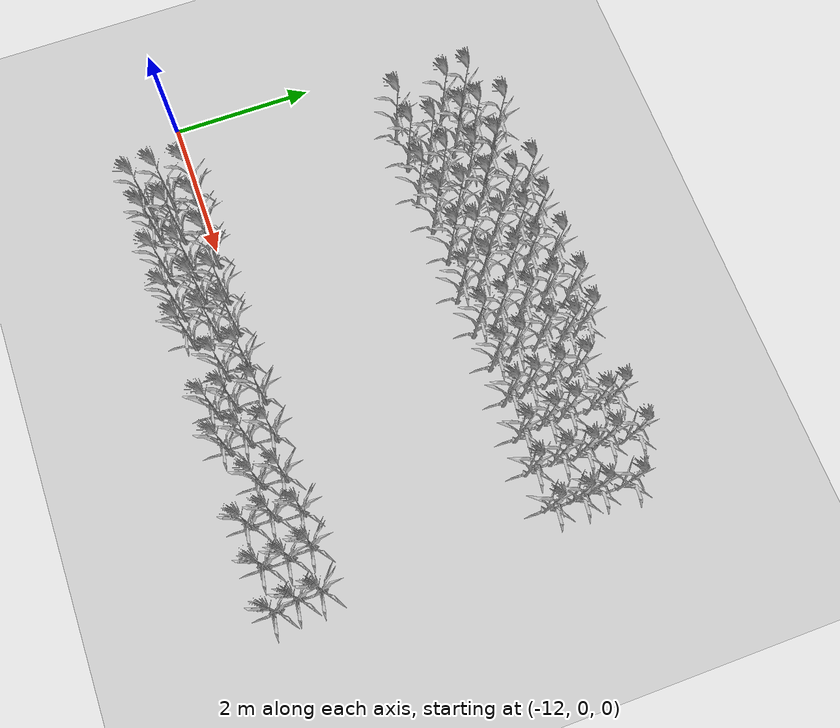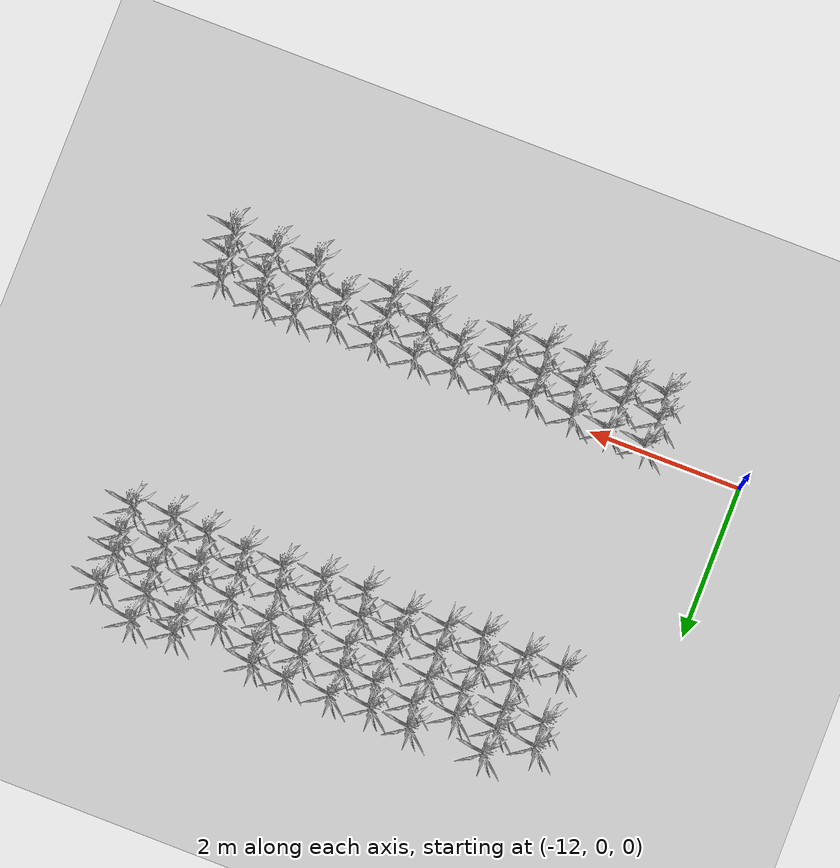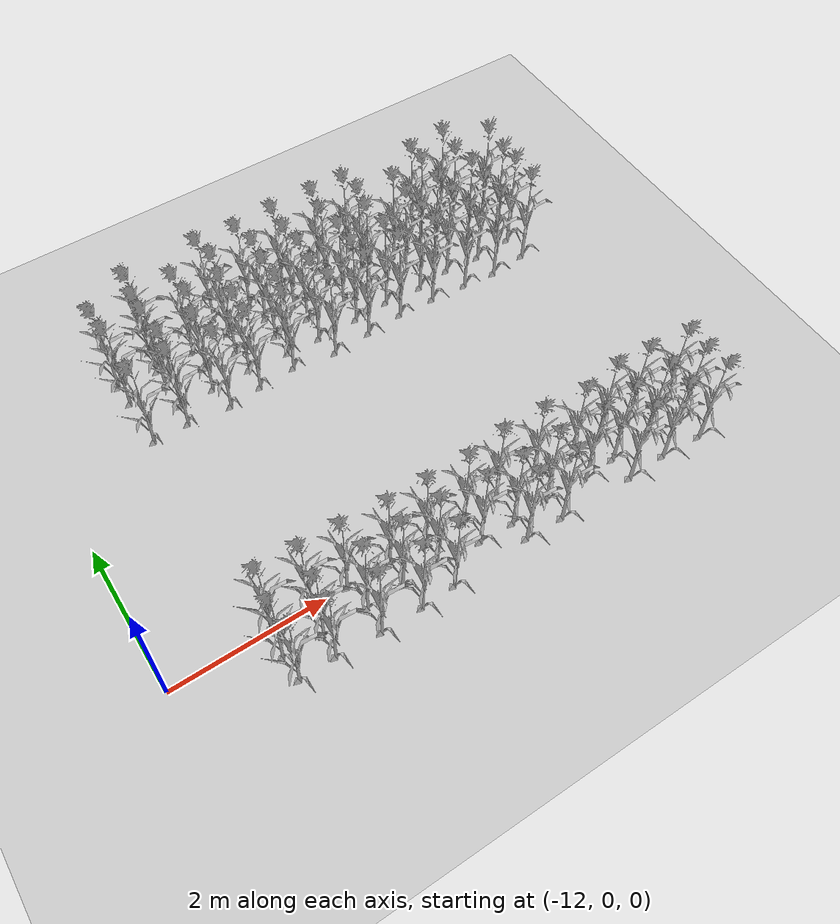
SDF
<sdf version="1.7">
 <world name="farmland_world">
  <model name="ground_plane">
   <static>1</static>
   <link name="link">
    <collision name="collision">
     <geometry><plane><normal>0 0 1</normal><size>40.0 40.0</size></plane></geometry>
     <surface><friction><ode><mu>100</mu><mu2>50</mu2></ode></friction></surface>
    </collision>
    <visual name="visual">
     <cast_shadows>0</cast_shadows>
     <geometry><plane><normal>0 0 1</normal><size>40.0 40.0</size></plane></geometry>
     <material>
      <script><uri>file://media/materials/scripts/gazebo.material</uri><name>Gazebo/Grey</name></script>
     </material>
    </visual>
   </link>
  </model>
  <model name="tree_3_2667">
   <static>1</static>
   <link name="link">
    <collision name="collision">
     <geometry><mesh><uri>model://Corn_low_poly/corn.obj</uri><scale>1 1 1</scale></mesh></geometry>
     <surface><friction><ode><mu>100</mu><mu2>50</mu2></ode></friction></surface>
    </collision>
    <visual name="visual">
     <geometry><mesh><uri>model://Corn_low_poly/corn.obj</uri><scale>1 1 1</scale></mesh></geometry>
    </visual>
   </link>
   <pose>-5.005461020102361 -0.03892165614499782 0 0 0 0</pose>
  </model>
  <model name="tree_3_2668">
   <static>1</static>
   <link name="link">
    <collision name="collision">
     <geometry><mesh><uri>model://Corn_low_poly/corn.obj</uri><scale>1 1 1</scale></mesh></geometry>
     <surface><friction><ode><mu>100</mu><mu2>50</mu2></ode></friction></surface>
    </collision>
    <visual name="visual">
     <geometry><mesh><uri>model://Corn_low_poly/corn.obj</uri><scale>1 1 1</scale></mesh></geometry>
    </visual>
   </link>
   <pose>-5.558517937180921 0.01446599095576704 0 0 0 0</pose>
  </model>
  <model name="tree_3_2669">
   <static>1</static>
   <link name="link">
    <collision name="collision">
     <geometry><mesh><uri>model://Corn_low_poly/corn.obj</uri><scale>1 1 1</scale></mesh></geometry>
     <surface><friction><ode><mu>100</mu><mu2>50</mu2></ode></friction></surface>
    </collision>
    <visual name="visual">
     <geometry><mesh><uri>model://Corn_low_poly/corn.obj</uri><scale>1 1 1</scale></mesh></geometry>
    </visual>
   </link>
   <pose>-6.015332700542262 0.034829561023227096 0 0 0 0</pose>
  </model>
  <model name="tree_3_2670">
   <static>1</static>
   <link name="link">
    <collision name="collision">
     <geometry><mesh><uri>model://Corn_low_poly/corn.obj</uri><scale>1 1 1</scale></mesh></geometry>
     <surface><friction><ode><mu>100</mu><mu2>50</mu2></ode></friction></surface>
    </collision>
    <visual name="visual">
     <geometry><mesh><uri>model://Corn_low_poly/corn.obj</uri><scale>1 1 1</scale></mesh></geometry>
    </visual>
   </link>
   <pose>-6.521444321734387 -0.04173886616548786 0 0 0 0</pose>
  </model>
  <model name="tree_3_2671">
   <static>1</static>
   <link name="link">
    <collision name="collision">
     <geometry><mesh><uri>model://Corn_low_poly/corn.obj</uri><scale>1 1 1</scale></mesh></geometry>
     <surface><friction><ode><mu>100</mu><mu2>50</mu2></ode></friction></surface>
    </collision>
    <visual name="visual">
     <geometry><mesh><uri>model://Corn_low_poly/corn.obj</uri><scale>1 1 1</scale></mesh></geometry>
    </visual>
   </link>
   <pose>-7.078208168965945 -0.0007108948782999392 0 0 0 0</pose>
  </model>
  <model name="tree_3_2672">
   <static>1</static>
   <link name="link">
    <collision name="collision">
     <geometry><mesh><uri>model://Corn_low_poly/corn.obj</uri><scale>1 1 1</scale></mesh></geometry>
     <surface><friction><ode><mu>100</mu><mu2>50</mu2></ode></friction></surface>
    </collision>
    <visual name="visual">
     <geometry><mesh><uri>model://Corn_low_poly/corn.obj</uri><scale>1 1 1</scale></mesh></geometry>
    </visual>
   </link>
   <pose>-7.621871746225695 0.012083217765882281 0 0 0 0</pose>
  </model>
  <model name="tree_3_2673">
   <static>1</static>
   <link name="link">
    <collision name="collision">
     <geometry><mesh><uri>model://Corn_low_poly/corn.obj</uri><scale>1 1 1</scale></mesh></geometry>
     <surface><friction><ode><mu>100</mu><mu2>50</mu2></ode></friction></surface>
    </collision>
    <visual name="visual">
     <geometry><mesh><uri>model://Corn_low_poly/corn.obj</uri><scale>1 1 1</scale></mesh></geometry>
    </visual>
   </link>
   <pose>-8.127287433233514 -0.047563016953597825 0 0 0 0</pose>
  </model>
  <model name="tree_3_2674">
   <static>1</static>
   <link name="link">
    <collision name="collision">
     <geometry><mesh><uri>model://Corn_low_poly/corn.obj</uri><scale>1 1 1</scale></mesh></geometry>
     <surface><friction><ode><mu>100</mu><mu2>50</mu2></ode></friction></surface>
    </collision>
    <visual name="visual">
     <geometry><mesh><uri>model://Corn_low_poly/corn.obj</uri><scale>1 1 1</scale></mesh></geometry>
    </visual>
   </link>
   <pose>-8.665980751416415 -0.042846647139199584 0 0 0 0</pose>
  </model>
  <model name="tree_3_2675">
   <static>1</static>
   <link name="link">
    <collision name="collision">
     <geometry><mesh><uri>model://Corn_low_poly/corn.obj</uri><scale>1 1 1</scale></mesh></geometry>
     <surface><friction><ode><mu>100</mu><mu2>50</mu2></ode></friction></surface>
    </collision>
    <visual name="visual">
     <geometry><mesh><uri>model://Corn_low_poly/corn.obj</uri><scale>1 1 1</scale></mesh></geometry>
    </visual>
   </link>
   <pose>-9.158788520445293 -0.03712890807018956 0 0 0 0</pose>
  </model>
  <model name="tree_3_2676">
   <static>1</static>
   <link name="link">
    <collision name="collision">
     <geometry><mesh><uri>model://Corn_low_poly/corn.obj</uri><scale>1 1 1</scale></mesh></geometry>
     <surface><friction><ode><mu>100</mu><mu2>50</mu2></ode></friction></surface>
    </collision>
    <visual name="visual">
     <geometry><mesh><uri>model://Corn_low_poly/corn.obj</uri><scale>1 1 1</scale></mesh></geometry>
    </visual>
   </link>
   <pose>-9.71469996242792 -0.002769773199193948 0 0 0 0</pose>
  </model>
  <model name="tree_3_2677">
   <static>1</static>
   <link name="link">
    <collision name="collision">
     <geometry><mesh><uri>model://Corn_low_poly/corn.obj</uri><scale>1 1 1</scale></mesh></geometry>
     <surface><friction><ode><mu>100</mu><mu2>50</mu2></ode></friction></surface>
    </collision>
    <visual name="visual">
     <geometry><mesh><uri>model://Corn_low_poly/corn.obj</uri><scale>1 1 1</scale></mesh></geometry>
    </visual>
   </link>
   <pose>-10.200924245602979 0.013914292661800576 0 0 0 0</pose>
  </model>
  <model name="tree_3_2678">
   <static>1</static>
   <link name="link">
    <collision name="collision">
     <geometry><mesh><uri>model://Corn_low_poly/corn.obj</uri><scale>1 1 1</scale></mesh></geometry>
     <surface><friction><ode><mu>100</mu><mu2>50</mu2></ode></friction></surface>
    </collision>
    <visual name="visual">
     <geometry><mesh><uri>model://Corn_low_poly/corn.obj</uri><scale>1 1 1</scale></mesh></geometry>
    </visual>
   </link>
   <pose>-10.692919859339682 0.03224031000938419 0 0 0 0</pose>
  </model>
  <model name="tree_3_2691">
   <static>1</static>
   <link name="link">
    <collision name="collision">
     <geometry><mesh><uri>model://Corn_low_poly/corn.obj</uri><scale>1 1 1</scale></mesh></geometry>
     <surface><friction><ode><mu>100</mu><mu2>50</mu2></ode></friction></surface>
    </collision>
    <visual name="visual">
     <geometry><mesh><uri>model://Corn_low_poly/corn.obj</uri><scale>1 1 1</scale></mesh></geometry>
    </visual>
   </link>
   <pose>-5.0073897281754425 -0.34292259781313195 0 0 0 0</pose>
  </model>
  <model name="tree_3_2692">
   <static>1</static>
   <link name="link">
    <collision name="collision">
     <geometry><mesh><uri>model://Corn_low_poly/corn.obj</uri><scale>1 1 1</scale></mesh></geometry>
     <surface><friction><ode><mu>100</mu><mu2>50</mu2></ode></friction></surface>
    </collision>
    <visual name="visual">
     <geometry><mesh><uri>model://Corn_low_poly/corn.obj</uri><scale>1 1 1</scale></mesh></geometry>
    </visual>
   </link>
   <pose>-5.515951637021246 -0.2916422591099003 0 0 0 0</pose>
  </model>
  <model name="tree_3_2693">
   <static>1</static>
   <link name="link">
    <collision name="collision">
     <geometry><mesh><uri>model://Corn_low_poly/corn.obj</uri><scale>1 1 1</scale></mesh></geometry>
     <surface><friction><ode><mu>100</mu><mu2>50</mu2></ode></friction></surface>
    </collision>
    <visual name="visual">
     <geometry><mesh><uri>model://Corn_low_poly/corn.obj</uri><scale>1 1 1</scale></mesh></geometry>
    </visual>
   </link>
   <pose>-6.074941422689837 -0.3210555459394091 0 0 0 0</pose>
  </model>
  <model name="tree_3_2694">
   <static>1</static>
   <link name="link">
    <collision name="collision">
     <geometry><mesh><uri>model://Corn_low_poly/corn.obj</uri><scale>1 1 1</scale></mesh></geometry>
     <surface><friction><ode><mu>100</mu><mu2>50</mu2></ode></friction></surface>
    </collision>
    <visual name="visual">
     <geometry><mesh><uri>model://Corn_low_poly/corn.obj</uri><scale>1 1 1</scale></mesh></geometry>
    </visual>
   </link>
   <pose>-6.5329542709808255 -0.3610771519396392 0 0 0 0</pose>
  </model>
  <model name="tree_3_2695">
   <static>1</static>
   <link name="link">
    <collision name="collision">
     <geometry><mesh><uri>model://Corn_low_poly/corn.obj</uri><scale>1 1 1</scale></mesh></geometry>
     <surface><friction><ode><mu>100</mu><mu2>50</mu2></ode></friction></surface>
    </collision>
    <visual name="visual">
     <geometry><mesh><uri>model://Corn_low_poly/corn.obj</uri><scale>1 1 1</scale></mesh></geometry>
    </visual>
   </link>
   <pose>-7.118680006862744 -0.33431720144306454 0 0 0 0</pose>
  </model>
  <model name="tree_3_2696">
   <static>1</static>
   <link name="link">
    <collision name="collision">
     <geometry><mesh><uri>model://Corn_low_poly/corn.obj</uri><scale>1 1 1</scale></mesh></geometry>
     <surface><friction><ode><mu>100</mu><mu2>50</mu2></ode></friction></surface>
    </collision>
    <visual name="visual">
     <geometry><mesh><uri>model://Corn_low_poly/corn.obj</uri><scale>1 1 1</scale></mesh></geometry>
    </visual>
   </link>
   <pose>-7.637800532885926 -0.3679542036782818 0 0 0 0</pose>
  </model>
  <model name="tree_3_2697">
   <static>1</static>
   <link name="link">
    <collision name="collision">
     <geometry><mesh><uri>model://Corn_low_poly/corn.obj</uri><scale>1 1 1</scale></mesh></geometry>
     <surface><friction><ode><mu>100</mu><mu2>50</mu2></ode></friction></surface>
    </collision>
    <visual name="visual">
     <geometry><mesh><uri>model://Corn_low_poly/corn.obj</uri><scale>1 1 1</scale></mesh></geometry>
    </visual>
   </link>
   <pose>-8.101384801843112 -0.35799459593328176 0 0 0 0</pose>
  </model>
  <model name="tree_3_2698">
   <static>1</static>
   <link name="link">
    <collision name="collision">
     <geometry><mesh><uri>model://Corn_low_poly/corn.obj</uri><scale>1 1 1</scale></mesh></geometry>
     <surface><friction><ode><mu>100</mu><mu2>50</mu2></ode></friction></surface>
    </collision>
    <visual name="visual">
     <geometry><mesh><uri>model://Corn_low_poly/corn.obj</uri><scale>1 1 1</scale></mesh></geometry>
    </visual>
   </link>
   <pose>-8.6828605007072 -0.3140445583170248 0 0 0 0</pose>
  </model>
  <model name="tree_3_2699">
   <static>1</static>
   <link name="link">
    <collision name="collision">
     <geometry><mesh><uri>model://Corn_low_poly/corn.obj</uri><scale>1 1 1</scale></mesh></geometry>
     <surface><friction><ode><mu>100</mu><mu2>50</mu2></ode></friction></surface>
    </collision>
    <visual name="visual">
     <geometry><mesh><uri>model://Corn_low_poly/corn.obj</uri><scale>1 1 1</scale></mesh></geometry>
    </visual>
   </link>
   <pose>-9.166084184159551 -0.32704368870034206 0 0 0 0</pose>
  </model>
  <model name="tree_3_2700">
   <static>1</static>
   <link name="link">
    <collision name="collision">
     <geometry><mesh><uri>model://Corn_low_poly/corn.obj</uri><scale>1 1 1</scale></mesh></geometry>
     <surface><friction><ode><mu>100</mu><mu2>50</mu2></ode></friction></surface>
    </collision>
    <visual name="visual">
     <geometry><mesh><uri>model://Corn_low_poly/corn.obj</uri><scale>1 1 1</scale></mesh></geometry>
    </visual>
   </link>
   <pose>-9.649936643444546 -0.3466791312548716 0 0 0 0</pose>
  </model>
  <model name="tree_3_2701">
   <static>1</static>
   <link name="link">
    <collision name="collision">
     <geometry><mesh><uri>model://Corn_low_poly/corn.obj</uri><scale>1 1 1</scale></mesh></geometry>
     <surface><friction><ode><mu>100</mu><mu2>50</mu2></ode></friction></surface>
    </collision>
    <visual name="visual">
     <geometry><mesh><uri>model://Corn_low_poly/corn.obj</uri><scale>1 1 1</scale></mesh></geometry>
    </visual>
   </link>
   <pose>-10.23594956622306 -0.3576464944440027 0 0 0 0</pose>
  </model>
  <model name="tree_3_2702">
   <static>1</static>
   <link name="link">
    <collision name="collision">
     <geometry><mesh><uri>model://Corn_low_poly/corn.obj</uri><scale>1 1 1</scale></mesh></geometry>
     <surface><friction><ode><mu>100</mu><mu2>50</mu2></ode></friction></surface>
    </collision>
    <visual name="visual">
     <geometry><mesh><uri>model://Corn_low_poly/corn.obj</uri><scale>1 1 1</scale></mesh></geometry>
    </visual>
   </link>
   <pose>-10.744633577113262 -0.33576601907430487 0 0 0 0</pose>
  </model>
  <model name="tree_3_2715">
   <static>1</static>
   <link name="link">
    <collision name="collision">
     <geometry><mesh><uri>model://Corn_low_poly/corn.obj</uri><scale>1 1 1</scale></mesh></geometry>
     <surface><friction><ode><mu>100</mu><mu2>50</mu2></ode></friction></surface>
    </collision>
    <visual name="visual">
     <geometry><mesh><uri>model://Corn_low_poly/corn.obj</uri><scale>1 1 1</scale></mesh></geometry>
    </visual>
   </link>
   <pose>-4.9566990501118156 -0.6484699835004293 0 0 0 0</pose>
  </model>
  <model name="tree_3_2716">
   <static>1</static>
   <link name="link">
    <collision name="collision">
     <geometry><mesh><uri>model://Corn_low_poly/corn.obj</uri><scale>1 1 1</scale></mesh></geometry>
     <surface><friction><ode><mu>100</mu><mu2>50</mu2></ode></friction></surface>
    </collision>
    <visual name="visual">
     <geometry><mesh><uri>model://Corn_low_poly/corn.obj</uri><scale>1 1 1</scale></mesh></geometry>
    </visual>
   </link>
   <pose>-5.522039462274884 -0.6219398752112656 0 0 0 0</pose>
  </model>
  <model name="tree_3_2717">
   <static>1</static>
   <link name="link">
    <collision name="collision">
     <geometry><mesh><uri>model://Corn_low_poly/corn.obj</uri><scale>1 1 1</scale></mesh></geometry>
     <surface><friction><ode><mu>100</mu><mu2>50</mu2></ode></friction></surface>
    </collision>
    <visual name="visual">
     <geometry><mesh><uri>model://Corn_low_poly/corn.obj</uri><scale>1 1 1</scale></mesh></geometry>
    </visual>
   </link>
   <pose>-6.068286556986242 -0.6434967291892282 0 0 0 0</pose>
  </model>
  <model name="tree_3_2719">
   <static>1</static>
   <link name="link">
    <collision name="collision">
     <geometry><mesh><uri>model://Corn_low_poly/corn.obj</uri><scale>1 1 1</scale></mesh></geometry>
     <surface><friction><ode><mu>100</mu><mu2>50</mu2></ode></friction></surface>
    </collision>
    <visual name="visual">
     <geometry><mesh><uri>model://Corn_low_poly/corn.obj</uri><scale>1 1 1</scale></mesh></geometry>
    </visual>
   </link>
   <pose>-7.102847602311576 -0.6294156738963925 0 0 0 0</pose>
  </model>
  <model name="tree_3_2720">
   <static>1</static>
   <link name="link">
    <collision name="collision">
     <geometry><mesh><uri>model://Corn_low_poly/corn.obj</uri><scale>1 1 1</scale></mesh></geometry>
     <surface><friction><ode><mu>100</mu><mu2>50</mu2></ode></friction></surface>
    </collision>
    <visual name="visual">
     <geometry><mesh><uri>model://Corn_low_poly/corn.obj</uri><scale>1 1 1</scale></mesh></geometry>
    </visual>
   </link>
   <pose>-7.617975109991763 -0.6216986736618575 0 0 0 0</pose>
  </model>
  <model name="tree_3_2722">
   <static>1</static>
   <link name="link">
    <collision name="collision">
     <geometry><mesh><uri>model://Corn_low_poly/corn.obj</uri><scale>1 1 1</scale></mesh></geometry>
     <surface><friction><ode><mu>100</mu><mu2>50</mu2></ode></friction></surface>
    </collision>
    <visual name="visual">
     <geometry><mesh><uri>model://Corn_low_poly/corn.obj</uri><scale>1 1 1</scale></mesh></geometry>
    </visual>
   </link>
   <pose>-8.6735419593811 -0.6541805480921566 0 0 0 0</pose>
  </model>
  <model name="tree_3_2723">
   <static>1</static>
   <link name="link">
    <collision name="collision">
     <geometry><mesh><uri>model://Corn_low_poly/corn.obj</uri><scale>1 1 1</scale></mesh></geometry>
     <surface><friction><ode><mu>100</mu><mu2>50</mu2></ode></friction></surface>
    </collision>
    <visual name="visual">
     <geometry><mesh><uri>model://Corn_low_poly/corn.obj</uri><scale>1 1 1</scale></mesh></geometry>
    </visual>
   </link>
   <pose>-9.1271908483266 -0.6773815703164939 0 0 0 0</pose>
  </model>
  <model name="tree_3_2724">
   <static>1</static>
   <link name="link">
    <collision name="collision">
     <geometry><mesh><uri>model://Corn_low_poly/corn.obj</uri><scale>1 1 1</scale></mesh></geometry>
     <surface><friction><ode><mu>100</mu><mu2>50</mu2></ode></friction></surface>
    </collision>
    <visual name="visual">
     <geometry><mesh><uri>model://Corn_low_poly/corn.obj</uri><scale>1 1 1</scale></mesh></geometry>
    </visual>
   </link>
   <pose>-9.673117353184137 -0.6788373450417805 0 0 0 0</pose>
  </model>
  <model name="tree_3_2725">
   <static>1</static>
   <link name="link">
    <collision name="collision">
     <geometry><mesh><uri>model://Corn_low_poly/corn.obj</uri><scale>1 1 1</scale></mesh></geometry>
     <surface><friction><ode><mu>100</mu><mu2>50</mu2></ode></friction></surface>
    </collision>
    <visual name="visual">
     <geometry><mesh><uri>model://Corn_low_poly/corn.obj</uri><scale>1 1 1</scale></mesh></geometry>
    </visual>
   </link>
   <pose>-10.248235287130777 -0.6440584615199862 0 0 0 0</pose>
  </model>
  <model name="tree_3_2726">
   <static>1</static>
   <link name="link">
    <collision name="collision">
     <geometry><mesh><uri>model://Corn_low_poly/corn.obj</uri><scale>1 1 1</scale></mesh></geometry>
     <surface><friction><ode><mu>100</mu><mu2>50</mu2></ode></friction></surface>
    </collision>
    <visual name="visual">
     <geometry><mesh><uri>model://Corn_low_poly/corn.obj</uri><scale>1 1 1</scale></mesh></geometry>
    </visual>
   </link>
   <pose>-10.71535279936114 -0.6533713466669103 0 0 0 0</pose>
  </model>
  <model name="tree_3_2739">
   <static>1</static>
   <link name="link">
    <collision name="collision">
     <geometry><mesh><uri>model://Corn_low_poly/corn.obj</uri><scale>1 1 1</scale></mesh></geometry>
     <surface><friction><ode><mu>100</mu><mu2>50</mu2></ode></friction></surface>
    </collision>
    <visual name="visual">
     <geometry><mesh><uri>model://Corn_low_poly/corn.obj</uri><scale>1 1 1</scale></mesh></geometry>
    </visual>
   </link>
   <pose>-5.0148959934779 3.0049108600123953 0 0 0 0</pose>
  </model>
  <model name="tree_3_2740">
   <static>1</static>
   <link name="link">
    <collision name="collision">
     <geometry><mesh><uri>model://Corn_low_poly/corn.obj</uri><scale>1 1 1</scale></mesh></geometry>
     <surface><friction><ode><mu>100</mu><mu2>50</mu2></ode></friction></surface>
    </collision>
    <visual name="visual">
     <geometry><mesh><uri>model://Corn_low_poly/corn.obj</uri><scale>1 1 1</scale></mesh></geometry>
    </visual>
   </link>
   <pose>-5.540468918998275 2.9560652670094396 0 0 0 0</pose>
  </model>
  <model name="tree_3_2741">
   <static>1</static>
   <link name="link">
    <collision name="collision">
     <geometry><mesh><uri>model://Corn_low_poly/corn.obj</uri><scale>1 1 1</scale></mesh></geometry>
     <surface><friction><ode><mu>100</mu><mu2>50</mu2></ode></friction></surface>
    </collision>
    <visual name="visual">
     <geometry><mesh><uri>model://Corn_low_poly/corn.obj</uri><scale>1 1 1</scale></mesh></geometry>
    </visual>
   </link>
   <pose>-6.006838629899966 2.993625138324946 0 0 0 0</pose>
  </model>
  <model name="tree_3_2742">
   <static>1</static>
   <link name="link">
    <collision name="collision">
     <geometry><mesh><uri>model://Corn_low_poly/corn.obj</uri><scale>1 1 1</scale></mesh></geometry>
     <surface><friction><ode><mu>100</mu><mu2>50</mu2></ode></friction></surface>
    </collision>
    <visual name="visual">
     <geometry><mesh><uri>model://Corn_low_poly/corn.obj</uri><scale>1 1 1</scale></mesh></geometry>
    </visual>
   </link>
   <pose>-6.519728958227264 3.0288287578758073 0 0 0 0</pose>
  </model>
  <model name="tree_3_2743">
   <static>1</static>
   <link name="link">
    <collision name="collision">
     <geometry><mesh><uri>model://Corn_low_poly/corn.obj</uri><scale>1 1 1</scale></mesh></geometry>
     <surface><friction><ode><mu>100</mu><mu2>50</mu2></ode></friction></surface>
    </collision>
    <visual name="visual">
     <geometry><mesh><uri>model://Corn_low_poly/corn.obj</uri><scale>1 1 1</scale></mesh></geometry>
    </visual>
   </link>
   <pose>-7.0377466675459965 3.0410405463541563 0 0 0 0</pose>
  </model>
  <model name="tree_3_2744">
   <static>1</static>
   <link name="link">
    <collision name="collision">
     <geometry><mesh><uri>model://Corn_low_poly/corn.obj</uri><scale>1 1 1</scale></mesh></geometry>
     <surface><friction><ode><mu>100</mu><mu2>50</mu2></ode></friction></surface>
    </collision>
    <visual name="visual">
     <geometry><mesh><uri>model://Corn_low_poly/corn.obj</uri><scale>1 1 1</scale></mesh></geometry>
    </visual>
   </link>
   <pose>-7.560178331364316 3.00104111445994 0 0 0 0</pose>
  </model>
  <model name="tree_3_2745">
   <static>1</static>
   <link name="link">
    <collision name="collision">
     <geometry><mesh><uri>model://Corn_low_poly/corn.obj</uri><scale>1 1 1</scale></mesh></geometry>
     <surface><friction><ode><mu>100</mu><mu2>50</mu2></ode></friction></surface>
    </collision>
    <visual name="visual">
     <geometry><mesh><uri>model://Corn_low_poly/corn.obj</uri><scale>1 1 1</scale></mesh></geometry>
    </visual>
   </link>
   <pose>-8.102955355454352 2.963830769224388 0 0 0 0</pose>
  </model>
  <model name="tree_3_2746">
   <static>1</static>
   <link name="link">
    <collision name="collision">
     <geometry><mesh><uri>model://Corn_low_poly/corn.obj</uri><scale>1 1 1</scale></mesh></geometry>
     <surface><friction><ode><mu>100</mu><mu2>50</mu2></ode></friction></surface>
    </collision>
    <visual name="visual">
     <geometry><mesh><uri>model://Corn_low_poly/corn.obj</uri><scale>1 1 1</scale></mesh></geometry>
    </visual>
   </link>
   <pose>-8.689948129370075 3.0485404414430284 0 0 0 0</pose>
  </model>
  <model name="tree_3_2747">
   <static>1</static>
   <link name="link">
    <collision name="collision">
     <geometry><mesh><uri>model://Corn_low_poly/corn.obj</uri><scale>1 1 1</scale></mesh></geometry>
     <surface><friction><ode><mu>100</mu><mu2>50</mu2></ode></friction></surface>
    </collision>
    <visual name="visual">
     <geometry><mesh><uri>model://Corn_low_poly/corn.obj</uri><scale>1 1 1</scale></mesh></geometry>
    </visual>
   </link>
   <pose>-9.206254930080863 3.013708507141263 0 0 0 0</pose>
  </model>
  <model name="tree_3_2748">
   <static>1</static>
   <link name="link">
    <collision name="collision">
     <geometry><mesh><uri>model://Corn_low_poly/corn.obj</uri><scale>1 1 1</scale></mesh></geometry>
     <surface><friction><ode><mu>100</mu><mu2>50</mu2></ode></friction></surface>
    </collision>
    <visual name="visual">
     <geometry><mesh><uri>model://Corn_low_poly/corn.obj</uri><scale>1 1 1</scale></mesh></geometry>
    </visual>
   </link>
   <pose>-9.66517518466381 2.952339216433387 0 0 0 0</pose>
  </model>
  <model name="tree_3_2749">
   <static>1</static>
   <link name="link">
    <collision name="collision">
     <geometry><mesh><uri>model://Corn_low_poly/corn.obj</uri><scale>1 1 1</scale></mesh></geometry>
     <surface><friction><ode><mu>100</mu><mu2>50</mu2></ode></friction></surface>
    </collision>
    <visual name="visual">
     <geometry><mesh><uri>model://Corn_low_poly/corn.obj</uri><scale>1 1 1</scale></mesh></geometry>
    </visual>
   </link>
   <pose>-10.243156685064086 3.0095952255971397 0 0 0 0</pose>
  </model>
  <model name="tree_3_2750">
   <static>1</static>
   <link name="link">
    <collision name="collision">
     <geometry><mesh><uri>model://Corn_low_poly/corn.obj</uri><scale>1 1 1</scale></mesh></geometry>
     <surface><friction><ode><mu>100</mu><mu2>50</mu2></ode></friction></surface>
    </collision>
    <visual name="visual">
     <geometry><mesh><uri>model://Corn_low_poly/corn.obj</uri><scale>1 1 1</scale></mesh></geometry>
    </visual>
   </link>
   <pose>-10.720711002424153 2.999509014126561 0 0 0 0</pose>
  </model>
  <model name="tree_3_2763">
   <static>1</static>
   <link name="link">
    <collision name="collision">
     <geometry><mesh><uri>model://Corn_low_poly/corn.obj</uri><scale>1 1 1</scale></mesh></geometry>
     <surface><friction><ode><mu>100</mu><mu2>50</mu2></ode></friction></surface>
    </collision>
    <visual name="visual">
     <geometry><mesh><uri>model://Corn_low_poly/corn.obj</uri><scale>1 1 1</scale></mesh></geometry>
    </visual>
   </link>
   <pose>-5.0081193600881635 3.3667260685712637 0 0 0 0</pose>
  </model>
  <model name="tree_3_2764">
   <static>1</static>
   <link name="link">
    <collision name="collision">
     <geometry><mesh><uri>model://Corn_low_poly/corn.obj</uri><scale>1 1 1</scale></mesh></geometry>
     <surface><friction><ode><mu>100</mu><mu2>50</mu2></ode></friction></surface>
    </collision>
    <visual name="visual">
     <geometry><mesh><uri>model://Corn_low_poly/corn.obj</uri><scale>1 1 1</scale></mesh></geometry>
    </visual>
   </link>
   <pose>-5.556968988070998 3.321181150593894 0 0 0 0</pose>
  </model>
  <model name="tree_3_2765">
   <static>1</static>
   <link name="link">
    <collision name="collision">
     <geometry><mesh><uri>model://Corn_low_poly/corn.obj</uri><scale>1 1 1</scale></mesh></geometry>
     <surface><friction><ode><mu>100</mu><mu2>50</mu2></ode></friction></surface>
    </collision>
    <visual name="visual">
     <geometry><mesh><uri>model://Corn_low_poly/corn.obj</uri><scale>1 1 1</scale></mesh></geometry>
    </visual>
   </link>
   <pose>-6.062043752448124 3.3539744800606877 0 0 0 0</pose>
  </model>
  <model name="tree_3_2766">
   <static>1</static>
   <link name="link">
    <collision name="collision">
     <geometry><mesh><uri>model://Corn_low_poly/corn.obj</uri><scale>1 1 1</scale></mesh></geometry>
     <surface><friction><ode><mu>100</mu><mu2>50</mu2></ode></friction></surface>
    </collision>
    <visual name="visual">
     <geometry><mesh><uri>model://Corn_low_poly/corn.obj</uri><scale>1 1 1</scale></mesh></geometry>
    </visual>
   </link>
   <pose>-6.546808149183483 3.2980447718404835 0 0 0 0</pose>
  </model>
  <model name="tree_3_2767">
   <static>1</static>
   <link name="link">
    <collision name="collision">
     <geometry><mesh><uri>model://Corn_low_poly/corn.obj</uri><scale>1 1 1</scale></mesh></geometry>
     <surface><friction><ode><mu>100</mu><mu2>50</mu2></ode></friction></surface>
    </collision>
    <visual name="visual">
     <geometry><mesh><uri>model://Corn_low_poly/corn.obj</uri><scale>1 1 1</scale></mesh></geometry>
    </visual>
   </link>
   <pose>-7.081095434142853 3.3264934731138904 0 0 0 0</pose>
  </model>
  <model name="tree_3_2768">
   <static>1</static>
   <link name="link">
    <collision name="collision">
     <geometry><mesh><uri>model://Corn_low_poly/corn.obj</uri><scale>1 1 1</scale></mesh></geometry>
     <surface><friction><ode><mu>100</mu><mu2>50</mu2></ode></friction></surface>
    </collision>
    <visual name="visual">
     <geometry><mesh><uri>model://Corn_low_poly/corn.obj</uri><scale>1 1 1</scale></mesh></geometry>
    </visual>
   </link>
   <pose>-7.5798242354915235 3.296602985682497 0 0 0 0</pose>
  </model>
  <model name="tree_3_2769">
   <static>1</static>
   <link name="link">
    <collision name="collision">
     <geometry><mesh><uri>model://Corn_low_poly/corn.obj</uri><scale>1 1 1</scale></mesh></geometry>
     <surface><friction><ode><mu>100</mu><mu2>50</mu2></ode></friction></surface>
    </collision>
    <visual name="visual">
     <geometry><mesh><uri>model://Corn_low_poly/corn.obj</uri><scale>1 1 1</scale></mesh></geometry>
    </visual>
   </link>
   <pose>-8.167996384640775 3.2855771999335026 0 0 0 0</pose>
  </model>
  <model name="tree_3_2770">
   <static>1</static>
   <link name="link">
    <collision name="collision">
     <geometry><mesh><uri>model://Corn_low_poly/corn.obj</uri><scale>1 1 1</scale></mesh></geometry>
     <surface><friction><ode><mu>100</mu><mu2>50</mu2></ode></friction></surface>
    </collision>
    <visual name="visual">
     <geometry><mesh><uri>model://Corn_low_poly/corn.obj</uri><scale>1 1 1</scale></mesh></geometry>
    </visual>
   </link>
   <pose>-8.635271370116486 3.30073253654176 0 0 0 0</pose>
  </model>
  <model name="tree_3_2771">
   <static>1</static>
   <link name="link">
    <collision name="collision">
     <geometry><mesh><uri>model://Corn_low_poly/corn.obj</uri><scale>1 1 1</scale></mesh></geometry>
     <surface><friction><ode><mu>100</mu><mu2>50</mu2></ode></friction></surface>
    </collision>
    <visual name="visual">
     <geometry><mesh><uri>model://Corn_low_poly/corn.obj</uri><scale>1 1 1</scale></mesh></geometry>
    </visual>
   </link>
   <pose>-9.196348337464114 3.3382475629323802 0 0 0 0</pose>
  </model>
  <model name="tree_3_2772">
   <static>1</static>
   <link name="link">
    <collision name="collision">
     <geometry><mesh><uri>model://Corn_low_poly/corn.obj</uri><scale>1 1 1</scale></mesh></geometry>
     <surface><friction><ode><mu>100</mu><mu2>50</mu2></ode></friction></surface>
    </collision>
    <visual name="visual">
     <geometry><mesh><uri>model://Corn_low_poly/corn.obj</uri><scale>1 1 1</scale></mesh></geometry>
    </visual>
   </link>
   <pose>-9.738855635359846 3.3157574864036485 0 0 0 0</pose>
  </model>
  <model name="tree_3_2773">
   <static>1</static>
   <link name="link">
    <collision name="collision">
     <geometry><mesh><uri>model://Corn_low_poly/corn.obj</uri><scale>1 1 1</scale></mesh></geometry>
     <surface><friction><ode><mu>100</mu><mu2>50</mu2></ode></friction></surface>
    </collision>
    <visual name="visual">
     <geometry><mesh><uri>model://Corn_low_poly/corn.obj</uri><scale>1 1 1</scale></mesh></geometry>
    </visual>
   </link>
   <pose>-10.198680316918749 3.3106193928254823 0 0 0 0</pose>
  </model>
  <model name="tree_3_2787">
   <static>1</static>
   <link name="link">
    <collision name="collision">
     <geometry><mesh><uri>model://Corn_low_poly/corn.obj</uri><scale>1 1 1</scale></mesh></geometry>
     <surface><friction><ode><mu>100</mu><mu2>50</mu2></ode></friction></surface>
    </collision>
    <visual name="visual">
     <geometry><mesh><uri>model://Corn_low_poly/corn.obj</uri><scale>1 1 1</scale></mesh></geometry>
    </visual>
   </link>
   <pose>-5.023631490883831 3.6217582577295517 0 0 0 0</pose>
  </model>
  <model name="tree_3_2788">
   <static>1</static>
   <link name="link">
    <collision name="collision">
     <geometry><mesh><uri>model://Corn_low_poly/corn.obj</uri><scale>1 1 1</scale></mesh></geometry>
     <surface><friction><ode><mu>100</mu><mu2>50</mu2></ode></friction></surface>
    </collision>
    <visual name="visual">
     <geometry><mesh><uri>model://Corn_low_poly/corn.obj</uri><scale>1 1 1</scale></mesh></geometry>
    </visual>
   </link>
   <pose>-5.523419721639815 3.635265427381813 0 0 0 0</pose>
  </model>
  <model name="tree_3_2789">
   <static>1</static>
   <link name="link">
    <collision name="collision">
     <geometry><mesh><uri>model://Corn_low_poly/corn.obj</uri><scale>1 1 1</scale></mesh></geometry>
     <surface><friction><ode><mu>100</mu><mu2>50</mu2></ode></friction></surface>
    </collision>
    <visual name="visual">
     <geometry><mesh><uri>model://Corn_low_poly/corn.obj</uri><scale>1 1 1</scale></mesh></geometry>
    </visual>
   </link>
   <pose>-6.072401170941969 3.632900440139051 0 0 0 0</pose>
  </model>
  <model name="tree_3_2790">
   <static>1</static>
   <link name="link">
    <collision name="collision">
     <geometry><mesh><uri>model://Corn_low_poly/corn.obj</uri><scale>1 1 1</scale></mesh></geometry>
     <surface><friction><ode><mu>100</mu><mu2>50</mu2></ode></friction></surface>
    </collision>
    <visual name="visual">
     <geometry><mesh><uri>model://Corn_low_poly/corn.obj</uri><scale>1 1 1</scale></mesh></geometry>
    </visual>
   </link>
   <pose>-6.561303455083138 3.63742495857431 0 0 0 0</pose>
  </model>
  <model name="tree_3_2791">
   <static>1</static>
   <link name="link">
    <collision name="collision">
     <geometry><mesh><uri>model://Corn_low_poly/corn.obj</uri><scale>1 1 1</scale></mesh></geometry>
     <surface><friction><ode><mu>100</mu><mu2>50</mu2></ode></friction></surface>
    </collision>
    <visual name="visual">
     <geometry><mesh><uri>model://Corn_low_poly/corn.obj</uri><scale>1 1 1</scale></mesh></geometry>
    </visual>
   </link>
   <pose>-7.11344843032698 3.719923837759139 0 0 0 0</pose>
  </model>
  <model name="tree_3_2792">
   <static>1</static>
   <link name="link">
    <collision name="collision">
     <geometry><mesh><uri>model://Corn_low_poly/corn.obj</uri><scale>1 1 1</scale></mesh></geometry>
     <surface><friction><ode><mu>100</mu><mu2>50</mu2></ode></friction></surface>
    </collision>
    <visual name="visual">
     <geometry><mesh><uri>model://Corn_low_poly/corn.obj</uri><scale>1 1 1</scale></mesh></geometry>
    </visual>
   </link>
   <pose>-7.5753247722935875 3.6375393575845245 0 0 0 0</pose>
  </model>
  <model name="tree_3_2793">
   <static>1</static>
   <link name="link">
    <collision name="collision">
     <geometry><mesh><uri>model://Corn_low_poly/corn.obj</uri><scale>1 1 1</scale></mesh></geometry>
     <surface><friction><ode><mu>100</mu><mu2>50</mu2></ode></friction></surface>
    </collision>
    <visual name="visual">
     <geometry><mesh><uri>model://Corn_low_poly/corn.obj</uri><scale>1 1 1</scale></mesh></geometry>
    </visual>
   </link>
   <pose>-8.128263148103267 3.6623788564183477 0 0 0 0</pose>
  </model>
  <model name="tree_3_2794">
   <static>1</static>
   <link name="link">
    <collision name="collision">
     <geometry><mesh><uri>model://Corn_low_poly/corn.obj</uri><scale>1 1 1</scale></mesh></geometry>
     <surface><friction><ode><mu>100</mu><mu2>50</mu2></ode></friction></surface>
    </collision>
    <visual name="visual">
     <geometry><mesh><uri>model://Corn_low_poly/corn.obj</uri><scale>1 1 1</scale></mesh></geometry>
    </visual>
   </link>
   <pose>-8.638676945971364 3.638825240360667 0 0 0 0</pose>
  </model>
  <model name="tree_3_2795">
   <static>1</static>
   <link name="link">
    <collision name="collision">
     <geometry><mesh><uri>model://Corn_low_poly/corn.obj</uri><scale>1 1 1</scale></mesh></geometry>
     <surface><friction><ode><mu>100</mu><mu2>50</mu2></ode></friction></surface>
    </collision>
    <visual name="visual">
     <geometry><mesh><uri>model://Corn_low_poly/corn.obj</uri><scale>1 1 1</scale></mesh></geometry>
    </visual>
   </link>
   <pose>-9.21175846689757 3.688969686123851 0 0 0 0</pose>
  </model>
  <model name="tree_3_2796">
   <static>1</static>
   <link name="link">
    <collision name="collision">
     <geometry><mesh><uri>model://Corn_low_poly/corn.obj</uri><scale>1 1 1</scale></mesh></geometry>
     <surface><friction><ode><mu>100</mu><mu2>50</mu2></ode></friction></surface>
    </collision>
    <visual name="visual">
     <geometry><mesh><uri>model://Corn_low_poly/corn.obj</uri><scale>1 1 1</scale></mesh></geometry>
    </visual>
   </link>
   <pose>-9.657941933291093 3.678421545519165 0 0 0 0</pose>
  </model>
  <model name="tree_3_2797">
   <static>1</static>
   <link name="link">
    <collision name="collision">
     <geometry><mesh><uri>model://Corn_low_poly/corn.obj</uri><scale>1 1 1</scale></mesh></geometry>
     <surface><friction><ode><mu>100</mu><mu2>50</mu2></ode></friction></surface>
    </collision>
    <visual name="visual">
     <geometry><mesh><uri>model://Corn_low_poly/corn.obj</uri><scale>1 1 1</scale></mesh></geometry>
    </visual>
   </link>
   <pose>-10.224870705335121 3.7167581577881723 0 0 0 0</pose>
  </model>
  <model name="tree_3_2798">
   <static>1</static>
   <link name="link">
    <collision name="collision">
     <geometry><mesh><uri>model://Corn_low_poly/corn.obj</uri><scale>1 1 1</scale></mesh></geometry>
     <surface><friction><ode><mu>100</mu><mu2>50</mu2></ode></friction></surface>
    </collision>
    <visual name="visual">
     <geometry><mesh><uri>model://Corn_low_poly/corn.obj</uri><scale>1 1 1</scale></mesh></geometry>
    </visual>
   </link>
   <pose>-10.731811028396551 3.692836945753473 0 0 0 0</pose>
  </model>
  <model name="tree_3_2811">
   <static>1</static>
   <link name="link">
    <collision name="collision">
     <geometry><mesh><uri>model://Corn_low_poly/corn.obj</uri><scale>1 1 1</scale></mesh></geometry>
     <surface><friction><ode><mu>100</mu><mu2>50</mu2></ode></friction></surface>
    </collision>
    <visual name="visual">
     <geometry><mesh><uri>model://Corn_low_poly/corn.obj</uri><scale>1 1 1</scale></mesh></geometry>
    </visual>
   </link>
   <pose>-4.9673279166655675 4.032687286690974 0 0 0 0</pose>
  </model>
  <model name="tree_3_2812">
   <static>1</static>
   <link name="link">
    <collision name="collision">
     <geometry><mesh><uri>model://Corn_low_poly/corn.obj</uri><scale>1 1 1</scale></mesh></geometry>
     <surface><friction><ode><mu>100</mu><mu2>50</mu2></ode></friction></surface>
    </collision>
    <visual name="visual">
     <geometry><mesh><uri>model://Corn_low_poly/corn.obj</uri><scale>1 1 1</scale></mesh></geometry>
    </visual>
   </link>
   <pose>-5.570679664049715 3.9537367550991247 0 0 0 0</pose>
  </model>
  <model name="tree_3_2813">
   <static>1</static>
   <link name="link">
    <collision name="collision">
     <geometry><mesh><uri>model://Corn_low_poly/corn.obj</uri><scale>1 1 1</scale></mesh></geometry>
     <surface><friction><ode><mu>100</mu><mu2>50</mu2></ode></friction></surface>
    </collision>
    <visual name="visual">
     <geometry><mesh><uri>model://Corn_low_poly/corn.obj</uri><scale>1 1 1</scale></mesh></geometry>
    </visual>
   </link>
   <pose>-6.047401963723674 4.042361959916778 0 0 0 0</pose>
  </model>
  <model name="tree_3_2814">
   <static>1</static>
   <link name="link">
    <collision name="collision">
     <geometry><mesh><uri>model://Corn_low_poly/corn.obj</uri><scale>1 1 1</scale></mesh></geometry>
     <surface><friction><ode><mu>100</mu><mu2>50</mu2></ode></friction></surface>
    </collision>
    <visual name="visual">
     <geometry><mesh><uri>model://Corn_low_poly/corn.obj</uri><scale>1 1 1</scale></mesh></geometry>
    </visual>
   </link>
   <pose>-6.54339617050331 3.974576740220655 0 0 0 0</pose>
  </model>
  <model name="tree_3_2815">
   <static>1</static>
   <link name="link">
    <collision name="collision">
     <geometry><mesh><uri>model://Corn_low_poly/corn.obj</uri><scale>1 1 1</scale></mesh></geometry>
     <surface><friction><ode><mu>100</mu><mu2>50</mu2></ode></friction></surface>
    </collision>
    <visual name="visual">
     <geometry><mesh><uri>model://Corn_low_poly/corn.obj</uri><scale>1 1 1</scale></mesh></geometry>
    </visual>
   </link>
   <pose>-7.04902042462649 4.027146690751117 0 0 0 0</pose>
  </model>
  <model name="tree_3_2816">
   <static>1</static>
   <link name="link">
    <collision name="collision">
     <geometry><mesh><uri>model://Corn_low_poly/corn.obj</uri><scale>1 1 1</scale></mesh></geometry>
     <surface><friction><ode><mu>100</mu><mu2>50</mu2></ode></friction></surface>
    </collision>
    <visual name="visual">
     <geometry><mesh><uri>model://Corn_low_poly/corn.obj</uri><scale>1 1 1</scale></mesh></geometry>
    </visual>
   </link>
   <pose>-7.631525583609346 3.9888513629975457 0 0 0 0</pose>
  </model>
  <model name="tree_3_2817">
   <static>1</static>
   <link name="link">
    <collision name="collision">
     <geometry><mesh><uri>model://Corn_low_poly/corn.obj</uri><scale>1 1 1</scale></mesh></geometry>
     <surface><friction><ode><mu>100</mu><mu2>50</mu2></ode></friction></surface>
    </collision>
    <visual name="visual">
     <geometry><mesh><uri>model://Corn_low_poly/corn.obj</uri><scale>1 1 1</scale></mesh></geometry>
    </visual>
   </link>
   <pose>-8.17054730818246 3.9598604785106755 0 0 0 0</pose>
  </model>
  <model name="tree_3_2818">
   <static>1</static>
   <link name="link">
    <collision name="collision">
     <geometry><mesh><uri>model://Corn_low_poly/corn.obj</uri><scale>1 1 1</scale></mesh></geometry>
     <surface><friction><ode><mu>100</mu><mu2>50</mu2></ode></friction></surface>
    </collision>
    <visual name="visual">
     <geometry><mesh><uri>model://Corn_low_poly/corn.obj</uri><scale>1 1 1</scale></mesh></geometry>
    </visual>
   </link>
   <pose>-8.605646876714973 3.973488284277861 0 0 0 0</pose>
  </model>
  <model name="tree_3_2819">
   <static>1</static>
   <link name="link">
    <collision name="collision">
     <geometry><mesh><uri>model://Corn_low_poly/corn.obj</uri><scale>1 1 1</scale></mesh></geometry>
     <surface><friction><ode><mu>100</mu><mu2>50</mu2></ode></friction></surface>
    </collision>
    <visual name="visual">
     <geometry><mesh><uri>model://Corn_low_poly/corn.obj</uri><scale>1 1 1</scale></mesh></geometry>
    </visual>
   </link>
   <pose>-9.137904963482208 4.045364543137358 0 0 0 0</pose>
  </model>
  <model name="tree_3_2820">
   <static>1</static>
   <link name="link">
    <collision name="collision">
     <geometry><mesh><uri>model://Corn_low_poly/corn.obj</uri><scale>1 1 1</scale></mesh></geometry>
     <surface><friction><ode><mu>100</mu><mu2>50</mu2></ode></friction></surface>
    </collision>
    <visual name="visual">
     <geometry><mesh><uri>model://Corn_low_poly/corn.obj</uri><scale>1 1 1</scale></mesh></geometry>
    </visual>
   </link>
   <pose>-9.686628780821247 3.9985126048809105 0 0 0 0</pose>
  </model>
  <model name="tree_3_2821">
   <static>1</static>
   <link name="link">
    <collision name="collision">
     <geometry><mesh><uri>model://Corn_low_poly/corn.obj</uri><scale>1 1 1</scale></mesh></geometry>
     <surface><friction><ode><mu>100</mu><mu2>50</mu2></ode></friction></surface>
    </collision>
    <visual name="visual">
     <geometry><mesh><uri>model://Corn_low_poly/corn.obj</uri><scale>1 1 1</scale></mesh></geometry>
    </visual>
   </link>
   <pose>-10.22117585736857 3.9686391050804577 0 0 0 0</pose>
  </model>
  <model name="tree_3_2822">
   <static>1</static>
   <link name="link">
    <collision name="collision">
     <geometry><mesh><uri>model://Corn_low_poly/corn.obj</uri><scale>1 1 1</scale></mesh></geometry>
     <surface><friction><ode><mu>100</mu><mu2>50</mu2></ode></friction></surface>
    </collision>
    <visual name="visual">
     <geometry><mesh><uri>model://Corn_low_poly/corn.obj</uri><scale>1 1 1</scale></mesh></geometry>
    </visual>
   </link>
   <pose>-10.746832456031166 4.0074208826925295 0 0 0 0</pose>
  </model>
  <model name="tree_3_2836">
   <static>1</static>
   <link name="link">
    <collision name="collision">
     <geometry><mesh><uri>model://Corn_low_poly/corn.obj</uri><scale>1 1 1</scale></mesh></geometry>
     <surface><friction><ode><mu>100</mu><mu2>50</mu2></ode></friction></surface>
    </collision>
    <visual name="visual">
     <geometry><mesh><uri>model://Corn_low_poly/corn.obj</uri><scale>1 1 1</scale></mesh></geometry>
    </visual>
   </link>
   <pose>-5.5155190001374175 4.330103218422009 0 0 0 0</pose>
  </model>
  <model name="tree_3_2837">
   <static>1</static>
   <link name="link">
    <collision name="collision">
     <geometry><mesh><uri>model://Corn_low_poly/corn.obj</uri><scale>1 1 1</scale></mesh></geometry>
     <surface><friction><ode><mu>100</mu><mu2>50</mu2></ode></friction></surface>
    </collision>
    <visual name="visual">
     <geometry><mesh><uri>model://Corn_low_poly/corn.obj</uri><scale>1 1 1</scale></mesh></geometry>
    </visual>
   </link>
   <pose>-6.051901014427608 4.282360731997137 0 0 0 0</pose>
  </model>
  <model name="tree_3_2839">
   <static>1</static>
   <link name="link">
    <collision name="collision">
     <geometry><mesh><uri>model://Corn_low_poly/corn.obj</uri><scale>1 1 1</scale></mesh></geometry>
     <surface><friction><ode><mu>100</mu><mu2>50</mu2></ode></friction></surface>
    </collision>
    <visual name="visual">
     <geometry><mesh><uri>model://Corn_low_poly/corn.obj</uri><scale>1 1 1</scale></mesh></geometry>
    </visual>
   </link>
   <pose>-7.105146707197939 4.302343181068291 0 0 0 0</pose>
  </model>
  <model name="tree_3_2840">
   <static>1</static>
   <link name="link">
    <collision name="collision">
     <geometry><mesh><uri>model://Corn_low_poly/corn.obj</uri><scale>1 1 1</scale></mesh></geometry>
     <surface><friction><ode><mu>100</mu><mu2>50</mu2></ode></friction></surface>
    </collision>
    <visual name="visual">
     <geometry><mesh><uri>model://Corn_low_poly/corn.obj</uri><scale>1 1 1</scale></mesh></geometry>
    </visual>
   </link>
   <pose>-7.562740804210097 4.3202385738039295 0 0 0 0</pose>
  </model>
  <model name="tree_3_2841">
   <static>1</static>
   <link name="link">
    <collision name="collision">
     <geometry><mesh><uri>model://Corn_low_poly/corn.obj</uri><scale>1 1 1</scale></mesh></geometry>
     <surface><friction><ode><mu>100</mu><mu2>50</mu2></ode></friction></surface>
    </collision>
    <visual name="visual">
     <geometry><mesh><uri>model://Corn_low_poly/corn.obj</uri><scale>1 1 1</scale></mesh></geometry>
    </visual>
   </link>
   <pose>-8.14146193423619 4.31744936600603 0 0 0 0</pose>
  </model>
  <model name="tree_3_2842">
   <static>1</static>
   <link name="link">
    <collision name="collision">
     <geometry><mesh><uri>model://Corn_low_poly/corn.obj</uri><scale>1 1 1</scale></mesh></geometry>
     <surface><friction><ode><mu>100</mu><mu2>50</mu2></ode></friction></surface>
    </collision>
    <visual name="visual">
     <geometry><mesh><uri>model://Corn_low_poly/corn.obj</uri><scale>1 1 1</scale></mesh></geometry>
    </visual>
   </link>
   <pose>-8.677598819065421 4.286687434066292 0 0 0 0</pose>
  </model>
  <model name="tree_3_2843">
   <static>1</static>
   <link name="link">
    <collision name="collision">
     <geometry><mesh><uri>model://Corn_low_poly/corn.obj</uri><scale>1 1 1</scale></mesh></geometry>
     <surface><friction><ode><mu>100</mu><mu2>50</mu2></ode></friction></surface>
    </collision>
    <visual name="visual">
     <geometry><mesh><uri>model://Corn_low_poly/corn.obj</uri><scale>1 1 1</scale></mesh></geometry>
    </visual>
   </link>
   <pose>-9.200701926798256 4.340292233801534 0 0 0 0</pose>
  </model>
  <model name="tree_3_2845">
   <static>1</static>
   <link name="link">
    <collision name="collision">
     <geometry><mesh><uri>model://Corn_low_poly/corn.obj</uri><scale>1 1 1</scale></mesh></geometry>
     <surface><friction><ode><mu>100</mu><mu2>50</mu2></ode></friction></surface>
    </collision>
    <visual name="visual">
     <geometry><mesh><uri>model://Corn_low_poly/corn.obj</uri><scale>1 1 1</scale></mesh></geometry>
    </visual>
   </link>
   <pose>-10.173383129854065 4.3104254761616865 0 0 0 0</pose>
  </model>
 </world>
</sdf>
